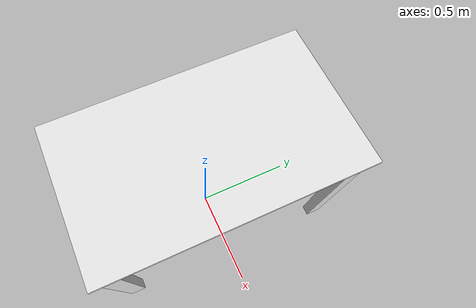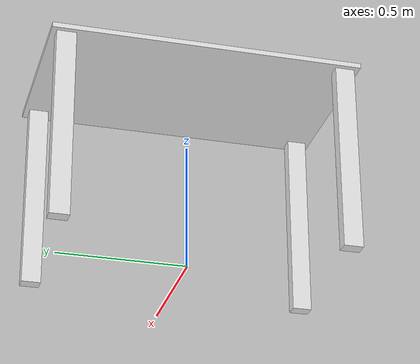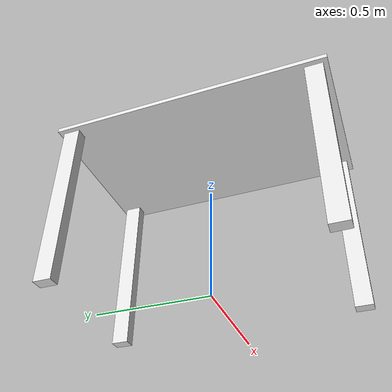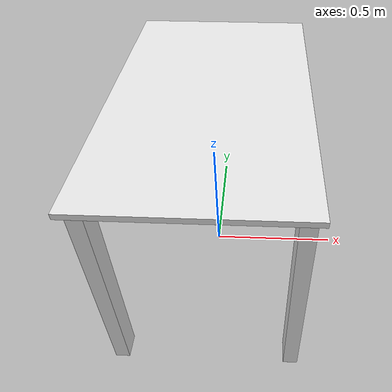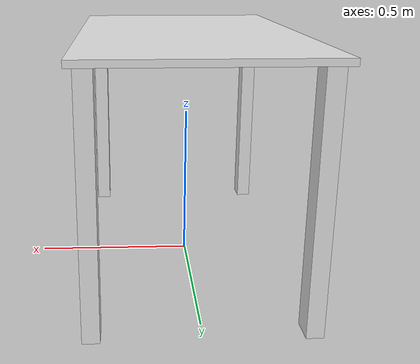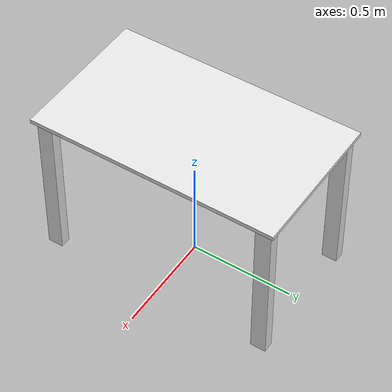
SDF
<?xml version="1.0"?>
<sdf version="1.6">
  <model name="rwc2015/hallwaytable">
    <link name="1_link">
      <collision name="1_col">
        <geometry>
          <box>
            <size>0.7 1.2 0.02</size>
          </box>
        </geometry>
      </collision>
      <visual name="1_vis">
        <geometry>
          <box>
            <size>0.7 1.2 0.02</size>
          </box>
        </geometry>
        <material>
          <ambient>0.9 0.9 0.9 1</ambient>
        </material>
      </visual>
      <pose>0.0 0.0 0.76 0 0 0</pose>
    </link>
    <link name="2_link">
      <collision name="2_col">
        <geometry>
          <box>
            <size>0.05 0.075 0.76</size>
          </box>
        </geometry>
      </collision>
      <visual name="2_vis">
        <geometry>
          <box>
            <size>0.05 0.075 0.76</size>
          </box>
        </geometry>
        <material>
          <ambient>0.9 0.9 0.9 1</ambient>
        </material>
      </visual>
      <pose>-0.305 -0.5425 0.38 0 0 0</pose>
    </link>
    <link name="3_link">
      <collision name="3_col">
        <geometry>
          <box>
            <size>0.05 0.075 0.76</size>
          </box>
        </geometry>
      </collision>
      <visual name="3_vis">
        <geometry>
          <box>
            <size>0.05 0.075 0.76</size>
          </box>
        </geometry>
        <material>
          <ambient>0.9 0.9 0.9 1</ambient>
        </material>
      </visual>
      <pose>-0.305 0.5425 0.38 0 0 0</pose>
    </link>
    <link name="4_link">
      <collision name="4_col">
        <geometry>
          <box>
            <size>0.05 0.075 0.76</size>
          </box>
        </geometry>
      </collision>
      <visual name="4_vis">
        <geometry>
          <box>
            <size>0.05 0.075 0.76</size>
          </box>
        </geometry>
        <material>
          <ambient>0.9 0.9 0.9 1</ambient>
        </material>
      </visual>
      <pose>0.305 -0.5425 0.38 0 0 0</pose>
    </link>
    <link name="5_link">
      <collision name="5_col">
        <geometry>
          <box>
            <size>0.05 0.075 0.76</size>
          </box>
        </geometry>
      </collision>
      <visual name="5_vis">
        <geometry>
          <box>
            <size>0.05 0.075 0.76</size>
          </box>
        </geometry>
        <material>
          <ambient>0.9 0.9 0.9 1</ambient>
        </material>
      </visual>
      <pose>0.305 0.5425 0.38 0 0 0</pose>
    </link>
    <link name="in_front_of">
      <virtual_volume name="in_front_of_vv">
        <geometry>
          <box>
            <size>0.3 1.85 1</size>
          </box>
        </geometry>
        <pose>0.0 -0.325 0.5 0 0 0</pose>
      </virtual_volume>
    </link>
    <link name="in_front_of_pos2">
      <virtual_volume name="in_front_of_pos2_vv">
        <geometry>
          <box>
            <size>0.3 1.85 1</size>
          </box>
        </geometry>
        <pose>0.0 0.325 0.5 0 0 0</pose>
      </virtual_volume>
    </link>
    <static>true</static>
  </model>
</sdf>
